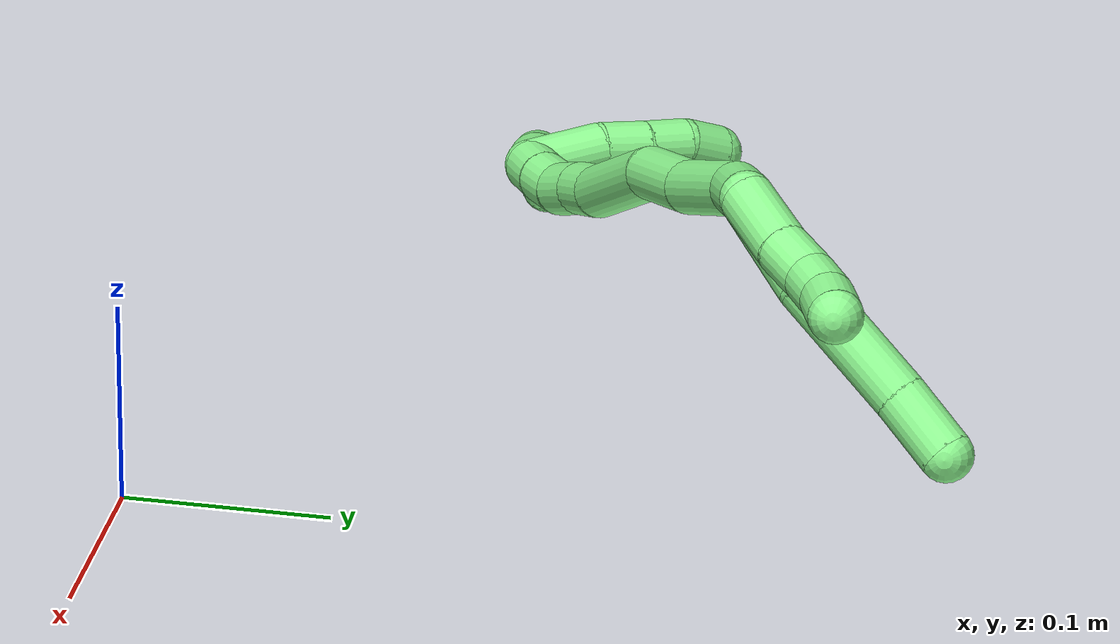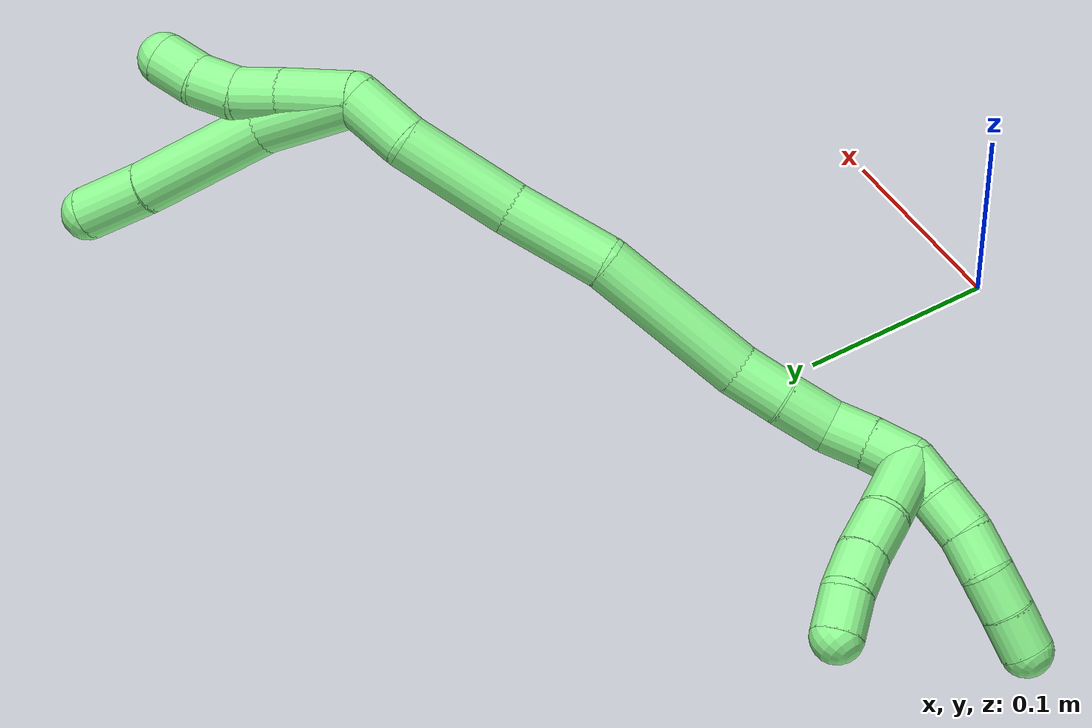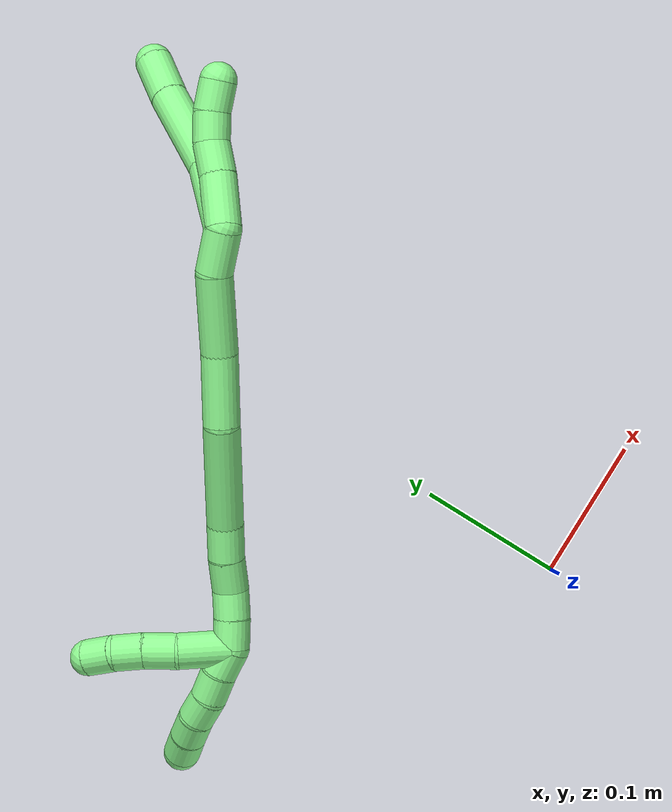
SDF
<sdf version="1.7">
 <world name="default">
  <model name="13">
   <static>0</static>
   <link name="13">
    <collision name="collision-cylinder-e_1_2_8">
     <pose>-0.005603 -0.021194 0.012303 1.04484 -0.224785 -0.129791</pose>
     <geometry><cylinder><radius>0.0125</radius><length>0.050277</length></cylinder></geometry>
     <surface>
      <friction><ode><mu>1.16</mu><mu2>1.16</mu2><slip1>0</slip1><slip2>0</slip2></ode></friction>
      <contact><ode><kp>1e+06</kp><kd>1</kd><max_vel>0</max_vel><min_depth>0.001</min_depth></ode></contact>
     </surface>
    </collision>
    <visual name="visual-cylinder-e_1_2_8">
     <pose>-0.005603 -0.021194 0.012303 1.04484 -0.224785 -0.129791</pose>
     <geometry><cylinder><radius>0.0125</radius><length>0.050277</length></cylinder></geometry>
     <material><ambient>0.564706 0.984314 0.572549 1</ambient></material>
    </visual>
    <collision name="collision-cylinder-e_2_8_9">
     <pose>-0.016116 -0.07353 0.03504 1.24751 -0.148387 -0.106873</pose>
     <geometry><cylinder><radius>0.0125</radius><length>0.066418</length></cylinder></geometry>
     <surface>
      <friction><ode><mu>1.16</mu><mu2>1.16</mu2><slip1>0</slip1><slip2>0</slip2></ode></friction>
      <contact><ode><kp>1e+06</kp><kd>1</kd><max_vel>0</max_vel><min_depth>0.001</min_depth></ode></contact>
     </surface>
    </collision>
    <visual name="visual-cylinder-e_2_8_9">
     <pose>-0.016116 -0.07353 0.03504 1.24751 -0.148387 -0.106873</pose>
     <geometry><cylinder><radius>0.0125</radius><length>0.066418</length></cylinder></geometry>
     <material><ambient>0.564706 0.984314 0.572549 1</ambient></material>
    </visual>
    <collision name="collision-cylinder-e_3_9_6">
     <pose>-0.023915 -0.119824 0.051752 1.17798 -0.174343 -0.116641</pose>
     <geometry><cylinder><radius>0.0125</radius><length>0.033305</length></cylinder></geometry>
     <surface>
      <friction><ode><mu>1.16</mu><mu2>1.16</mu2><slip1>0</slip1><slip2>0</slip2></ode></friction>
      <contact><ode><kp>1e+06</kp><kd>1</kd><max_vel>0</max_vel><min_depth>0.001</min_depth></ode></contact>
     </surface>
    </collision>
    <visual name="visual-cylinder-e_3_9_6">
     <pose>-0.023915 -0.119824 0.051752 1.17798 -0.174343 -0.116641</pose>
     <geometry><cylinder><radius>0.0125</radius><length>0.033305</length></cylinder></geometry>
     <material><ambient>0.564706 0.984314 0.572549 1</ambient></material>
    </visual>
    <collision name="collision-cylinder-e_1_2_10">
     <pose>-0.001558 -0.012516 0.01294 0.768755 -0.086336 -0.034941</pose>
     <geometry><cylinder><radius>0.0125</radius><length>0.03614</length></cylinder></geometry>
     <surface>
      <friction><ode><mu>1.16</mu><mu2>1.16</mu2><slip1>0</slip1><slip2>0</slip2></ode></friction>
      <contact><ode><kp>1e+06</kp><kd>1</kd><max_vel>0</max_vel><min_depth>0.001</min_depth></ode></contact>
     </surface>
    </collision>
    <visual name="visual-cylinder-e_1_2_10">
     <pose>-0.001558 -0.012516 0.01294 0.768755 -0.086336 -0.034941</pose>
     <geometry><cylinder><radius>0.0125</radius><length>0.03614</length></cylinder></geometry>
     <material><ambient>0.564706 0.984314 0.572549 1</ambient></material>
    </visual>
    <collision name="collision-cylinder-e_2_10_11">
     <pose>-0.003033 -0.033322 0.033687 0.815344 0.007347 0.003173</pose>
     <geometry><cylinder><radius>0.0125</radius><length>0.022775</length></cylinder></geometry>
     <surface>
      <friction><ode><mu>1.16</mu><mu2>1.16</mu2><slip1>0</slip1><slip2>0</slip2></ode></friction>
      <contact><ode><kp>1e+06</kp><kd>1</kd><max_vel>0</max_vel><min_depth>0.001</min_depth></ode></contact>
     </surface>
    </collision>
    <visual name="visual-cylinder-e_2_10_11">
     <pose>-0.003033 -0.033322 0.033687 0.815344 0.007347 0.003173</pose>
     <geometry><cylinder><radius>0.0125</radius><length>0.022775</length></cylinder></geometry>
     <material><ambient>0.564706 0.984314 0.572549 1</ambient></material>
    </visual>
    <collision name="collision-cylinder-e_3_11_12">
     <pose>-0.002455 -0.046729 0.05031 0.525949 0.048383 0.013028</pose>
     <geometry><cylinder><radius>0.0125</radius><length>0.020411</length></cylinder></geometry>
     <surface>
      <friction><ode><mu>1.16</mu><mu2>1.16</mu2><slip1>0</slip1><slip2>0</slip2></ode></friction>
      <contact><ode><kp>1e+06</kp><kd>1</kd><max_vel>0</max_vel><min_depth>0.001</min_depth></ode></contact>
     </surface>
    </collision>
    <visual name="visual-cylinder-e_3_11_12">
     <pose>-0.002455 -0.046729 0.05031 0.525949 0.048383 0.013028</pose>
     <geometry><cylinder><radius>0.0125</radius><length>0.020411</length></cylinder></geometry>
     <material><ambient>0.564706 0.984314 0.572549 1</ambient></material>
    </visual>
    <collision name="collision-cylinder-e_4_12_5">
     <pose>-0.001991 -0.055126 0.068929 0.322896 -0.002779 -0.000453</pose>
     <geometry><cylinder><radius>0.0125</radius><length>0.020675</length></cylinder></geometry>
     <surface>
      <friction><ode><mu>1.16</mu><mu2>1.16</mu2><slip1>0</slip1><slip2>0</slip2></ode></friction>
      <contact><ode><kp>1e+06</kp><kd>1</kd><max_vel>0</max_vel><min_depth>0.001</min_depth></ode></contact>
     </surface>
    </collision>
    <visual name="visual-cylinder-e_4_12_5">
     <pose>-0.001991 -0.055126 0.068929 0.322896 -0.002779 -0.000453</pose>
     <geometry><cylinder><radius>0.0125</radius><length>0.020675</length></cylinder></geometry>
     <material><ambient>0.564706 0.984314 0.572549 1</ambient></material>
    </visual>
    <collision name="collision-cylinder-e_1_2_13">
     <pose>-0.002718 0.002464 -0.014531 -2.9736 -0.182395 1.65336</pose>
     <geometry><cylinder><radius>0.0125</radius><length>0.029973</length></cylinder></geometry>
     <surface>
      <friction><ode><mu>1.16</mu><mu2>1.16</mu2><slip1>0</slip1><slip2>0</slip2></ode></friction>
      <contact><ode><kp>1e+06</kp><kd>1</kd><max_vel>0</max_vel><min_depth>0.001</min_depth></ode></contact>
     </surface>
    </collision>
    <visual name="visual-cylinder-e_1_2_13">
     <pose>-0.002718 0.002464 -0.014531 -2.9736 -0.182395 1.65336</pose>
     <geometry><cylinder><radius>0.0125</radius><length>0.029973</length></cylinder></geometry>
     <material><ambient>0.564706 0.984314 0.572549 1</ambient></material>
    </visual>
    <collision name="collision-cylinder-e_2_13_14">
     <pose>-0.016682 0.012666 -0.053367 -2.83338 -0.415211 1.87074</pose>
     <geometry><cylinder><radius>0.0125</radius><length>0.055752</length></cylinder></geometry>
     <surface>
      <friction><ode><mu>1.16</mu><mu2>1.16</mu2><slip1>0</slip1><slip2>0</slip2></ode></friction>
      <contact><ode><kp>1e+06</kp><kd>1</kd><max_vel>0</max_vel><min_depth>0.001</min_depth></ode></contact>
     </surface>
    </collision>
    <visual name="visual-cylinder-e_2_13_14">
     <pose>-0.016682 0.012666 -0.053367 -2.83338 -0.415211 1.87074</pose>
     <geometry><cylinder><radius>0.0125</radius><length>0.055752</length></cylinder></geometry>
     <material><ambient>0.564706 0.984314 0.572549 1</ambient></material>
    </visual>
    <collision name="collision-cylinder-e_3_14_15">
     <pose>-0.035305 0.028705 -0.099579 -2.77942 -0.305142 1.39712</pose>
     <geometry><cylinder><radius>0.0125</radius><length>0.049122</length></cylinder></geometry>
     <surface>
      <friction><ode><mu>1.16</mu><mu2>1.16</mu2><slip1>0</slip1><slip2>0</slip2></ode></friction>
      <contact><ode><kp>1e+06</kp><kd>1</kd><max_vel>0</max_vel><min_depth>0.001</min_depth></ode></contact>
     </surface>
    </collision>
    <visual name="visual-cylinder-e_3_14_15">
     <pose>-0.035305 0.028705 -0.099579 -2.77942 -0.305142 1.39712</pose>
     <geometry><cylinder><radius>0.0125</radius><length>0.049122</length></cylinder></geometry>
     <material><ambient>0.564706 0.984314 0.572549 1</ambient></material>
    </visual>
    <collision name="collision-cylinder-e_4_15_16">
     <pose>-0.060689 0.043101 -0.154545 -2.95923 -0.491706 2.44272</pose>
     <geometry><cylinder><radius>0.0125</radius><length>0.076269</length></cylinder></geometry>
     <surface>
      <friction><ode><mu>1.16</mu><mu2>1.16</mu2><slip1>0</slip1><slip2>0</slip2></ode></friction>
      <contact><ode><kp>1e+06</kp><kd>1</kd><max_vel>0</max_vel><min_depth>0.001</min_depth></ode></contact>
     </surface>
    </collision>
    <visual name="visual-cylinder-e_4_15_16">
     <pose>-0.060689 0.043101 -0.154545 -2.95923 -0.491706 2.44272</pose>
     <geometry><cylinder><radius>0.0125</radius><length>0.076269</length></cylinder></geometry>
     <material><ambient>0.564706 0.984314 0.572549 1</ambient></material>
    </visual>
    <collision name="collision-cylinder-e_5_16_17">
     <pose>-0.083132 0.052767 -0.198611 -2.82804 -0.366329 1.72873</pose>
     <geometry><cylinder><radius>0.0125</radius><length>0.024785</length></cylinder></geometry>
     <surface>
      <friction><ode><mu>1.16</mu><mu2>1.16</mu2><slip1>0</slip1><slip2>0</slip2></ode></friction>
      <contact><ode><kp>1e+06</kp><kd>1</kd><max_vel>0</max_vel><min_depth>0.001</min_depth></ode></contact>
     </surface>
    </collision>
    <visual name="visual-cylinder-e_5_16_17">
     <pose>-0.083132 0.052767 -0.198611 -2.82804 -0.366329 1.72873</pose>
     <geometry><cylinder><radius>0.0125</radius><length>0.024785</length></cylinder></geometry>
     <material><ambient>0.564706 0.984314 0.572549 1</ambient></material>
    </visual>
    <collision name="collision-cylinder-e_6_17_18">
     <pose>-0.09287 0.059904 -0.219621 -2.7989 -0.462805 1.87471</pose>
     <geometry><cylinder><radius>0.0125</radius><length>0.023741</length></cylinder></geometry>
     <surface>
      <friction><ode><mu>1.16</mu><mu2>1.16</mu2><slip1>0</slip1><slip2>0</slip2></ode></friction>
      <contact><ode><kp>1e+06</kp><kd>1</kd><max_vel>0</max_vel><min_depth>0.001</min_depth></ode></contact>
     </surface>
    </collision>
    <visual name="visual-cylinder-e_6_17_18">
     <pose>-0.09287 0.059904 -0.219621 -2.7989 -0.462805 1.87471</pose>
     <geometry><cylinder><radius>0.0125</radius><length>0.023741</length></cylinder></geometry>
     <material><ambient>0.564706 0.984314 0.572549 1</ambient></material>
    </visual>
    <collision name="collision-cylinder-e_7_18_19">
     <pose>-0.100201 0.068039 -0.238296 -2.65696 -0.204299 0.786261</pose>
     <geometry><cylinder><radius>0.0125</radius><length>0.020015</length></cylinder></geometry>
     <surface>
      <friction><ode><mu>1.16</mu><mu2>1.16</mu2><slip1>0</slip1><slip2>0</slip2></ode></friction>
      <contact><ode><kp>1e+06</kp><kd>1</kd><max_vel>0</max_vel><min_depth>0.001</min_depth></ode></contact>
     </surface>
    </collision>
    <visual name="visual-cylinder-e_7_18_19">
     <pose>-0.100201 0.068039 -0.238296 -2.65696 -0.204299 0.786261</pose>
     <geometry><cylinder><radius>0.0125</radius><length>0.020015</length></cylinder></geometry>
     <material><ambient>0.564706 0.984314 0.572549 1</ambient></material>
    </visual>
    <collision name="collision-cylinder-e_8_19_1">
     <pose>-0.103831 0.076663 -0.256155 -2.7256 -0.157941 0.717477</pose>
     <geometry><cylinder><radius>0.0125</radius><length>0.020341</length></cylinder></geometry>
     <surface>
      <friction><ode><mu>1.16</mu><mu2>1.16</mu2><slip1>0</slip1><slip2>0</slip2></ode></friction>
      <contact><ode><kp>1e+06</kp><kd>1</kd><max_vel>0</max_vel><min_depth>0.001</min_depth></ode></contact>
     </surface>
    </collision>
    <visual name="visual-cylinder-e_8_19_1">
     <pose>-0.103831 0.076663 -0.256155 -2.7256 -0.157941 0.717477</pose>
     <geometry><cylinder><radius>0.0125</radius><length>0.020341</length></cylinder></geometry>
     <material><ambient>0.564706 0.984314 0.572549 1</ambient></material>
    </visual>
    <collision name="collision-cylinder-e_1_1_20">
     <pose>-0.093881 0.06973 -0.27395 2.23511 0.691128 1.27304</pose>
     <geometry><cylinder><radius>0.0125</radius><length>0.036238</length></cylinder></geometry>
     <surface>
      <friction><ode><mu>1.16</mu><mu2>1.16</mu2><slip1>0</slip1><slip2>0</slip2></ode></friction>
      <contact><ode><kp>1e+06</kp><kd>1</kd><max_vel>0</max_vel><min_depth>0.001</min_depth></ode></contact>
     </surface>
    </collision>
    <visual name="visual-cylinder-e_1_1_20">
     <pose>-0.093881 0.06973 -0.27395 2.23511 0.691128 1.27304</pose>
     <geometry><cylinder><radius>0.0125</radius><length>0.036238</length></cylinder></geometry>
     <material><ambient>0.564706 0.984314 0.572549 1</ambient></material>
    </visual>
    <collision name="collision-cylinder-e_2_20_21">
     <pose>-0.076745 0.050411 -0.287726 2.12629 0.518141 0.889223</pose>
     <geometry><cylinder><radius>0.0125</radius><length>0.022563</length></cylinder></geometry>
     <surface>
      <friction><ode><mu>1.16</mu><mu2>1.16</mu2><slip1>0</slip1><slip2>0</slip2></ode></friction>
      <contact><ode><kp>1e+06</kp><kd>1</kd><max_vel>0</max_vel><min_depth>0.001</min_depth></ode></contact>
     </surface>
    </collision>
    <visual name="visual-cylinder-e_2_20_21">
     <pose>-0.076745 0.050411 -0.287726 2.12629 0.518141 0.889223</pose>
     <geometry><cylinder><radius>0.0125</radius><length>0.022563</length></cylinder></geometry>
     <material><ambient>0.564706 0.984314 0.572549 1</ambient></material>
    </visual>
    <collision name="collision-cylinder-e_3_21_22">
     <pose>-0.066193 0.034823 -0.298568 2.23412 0.494183 0.954698</pose>
     <geometry><cylinder><radius>0.0125</radius><length>0.020934</length></cylinder></geometry>
     <surface>
      <friction><ode><mu>1.16</mu><mu2>1.16</mu2><slip1>0</slip1><slip2>0</slip2></ode></friction>
      <contact><ode><kp>1e+06</kp><kd>1</kd><max_vel>0</max_vel><min_depth>0.001</min_depth></ode></contact>
     </surface>
    </collision>
    <visual name="visual-cylinder-e_3_21_22">
     <pose>-0.066193 0.034823 -0.298568 2.23412 0.494183 0.954698</pose>
     <geometry><cylinder><radius>0.0125</radius><length>0.020934</length></cylinder></geometry>
     <material><ambient>0.564706 0.984314 0.572549 1</ambient></material>
    </visual>
    <collision name="collision-cylinder-e_4_22_4">
     <pose>-0.059189 0.020084 -0.310768 2.28835 0.202595 0.440007</pose>
     <geometry><cylinder><radius>0.0125</radius><length>0.020265</length></cylinder></geometry>
     <surface>
      <friction><ode><mu>1.16</mu><mu2>1.16</mu2><slip1>0</slip1><slip2>0</slip2></ode></friction>
      <contact><ode><kp>1e+06</kp><kd>1</kd><max_vel>0</max_vel><min_depth>0.001</min_depth></ode></contact>
     </surface>
    </collision>
    <visual name="visual-cylinder-e_4_22_4">
     <pose>-0.059189 0.020084 -0.310768 2.28835 0.202595 0.440007</pose>
     <geometry><cylinder><radius>0.0125</radius><length>0.020265</length></cylinder></geometry>
     <material><ambient>0.564706 0.984314 0.572549 1</ambient></material>
    </visual>
    <collision name="collision-cylinder-e_1_1_23">
     <pose>-0.105583 0.080653 -0.275341 3.13472 -0.015226 -2.29354</pose>
     <geometry><cylinder><radius>0.0125</radius><length>0.02</length></cylinder></geometry>
     <surface>
      <friction><ode><mu>1.16</mu><mu2>1.16</mu2><slip1>0</slip1><slip2>0</slip2></ode></friction>
      <contact><ode><kp>1e+06</kp><kd>1</kd><max_vel>0</max_vel><min_depth>0.001</min_depth></ode></contact>
     </surface>
    </collision>
    <visual name="visual-cylinder-e_1_1_23">
     <pose>-0.105583 0.080653 -0.275341 3.13472 -0.015226 -2.29354</pose>
     <geometry><cylinder><radius>0.0125</radius><length>0.02</length></cylinder></geometry>
     <material><ambient>0.564706 0.984314 0.572549 1</ambient></material>
    </visual>
    <collision name="collision-cylinder-e_2_23_24">
     <pose>-0.10721 0.080373 -0.295228 3.12024 -0.148019 -2.8556</pose>
     <geometry><cylinder><radius>0.0125</radius><length>0.02</length></cylinder></geometry>
     <surface>
      <friction><ode><mu>1.16</mu><mu2>1.16</mu2><slip1>0</slip1><slip2>0</slip2></ode></friction>
      <contact><ode><kp>1e+06</kp><kd>1</kd><max_vel>0</max_vel><min_depth>0.001</min_depth></ode></contact>
     </surface>
    </collision>
    <visual name="visual-cylinder-e_2_23_24">
     <pose>-0.10721 0.080373 -0.295228 3.12024 -0.148019 -2.8556</pose>
     <geometry><cylinder><radius>0.0125</radius><length>0.02</length></cylinder></geometry>
     <material><ambient>0.564706 0.984314 0.572549 1</ambient></material>
    </visual>
    <collision name="collision-cylinder-e_3_24_25">
     <pose>-0.110642 0.078067 -0.314697 2.92625 -0.19702 -1.48137</pose>
     <geometry><cylinder><radius>0.0125</radius><length>0.02</length></cylinder></geometry>
     <surface>
      <friction><ode><mu>1.16</mu><mu2>1.16</mu2><slip1>0</slip1><slip2>0</slip2></ode></friction>
      <contact><ode><kp>1e+06</kp><kd>1</kd><max_vel>0</max_vel><min_depth>0.001</min_depth></ode></contact>
     </surface>
    </collision>
    <visual name="visual-cylinder-e_3_24_25">
     <pose>-0.110642 0.078067 -0.314697 2.92625 -0.19702 -1.48137</pose>
     <geometry><cylinder><radius>0.0125</radius><length>0.02</length></cylinder></geometry>
     <material><ambient>0.564706 0.984314 0.572549 1</ambient></material>
    </visual>
    <collision name="collision-cylinder-e_4_25_26">
     <pose>-0.116582 0.073676 -0.333157 2.88862 -0.409653 -2.04301</pose>
     <geometry><cylinder><radius>0.0125</radius><length>0.02</length></cylinder></geometry>
     <surface>
      <friction><ode><mu>1.16</mu><mu2>1.16</mu2><slip1>0</slip1><slip2>0</slip2></ode></friction>
      <contact><ode><kp>1e+06</kp><kd>1</kd><max_vel>0</max_vel><min_depth>0.001</min_depth></ode></contact>
     </surface>
    </collision>
    <visual name="visual-cylinder-e_4_25_26">
     <pose>-0.116582 0.073676 -0.333157 2.88862 -0.409653 -2.04301</pose>
     <geometry><cylinder><radius>0.0125</radius><length>0.02</length></cylinder></geometry>
     <material><ambient>0.564706 0.984314 0.572549 1</ambient></material>
    </visual>
    <collision name="collision-cylinder-e_5_26_3">
     <pose>-0.125268 0.068833 -0.350488 2.84884 -0.489586 -2.07525</pose>
     <geometry><cylinder><radius>0.0125</radius><length>0.02</length></cylinder></geometry>
     <surface>
      <friction><ode><mu>1.16</mu><mu2>1.16</mu2><slip1>0</slip1><slip2>0</slip2></ode></friction>
      <contact><ode><kp>1e+06</kp><kd>1</kd><max_vel>0</max_vel><min_depth>0.001</min_depth></ode></contact>
     </surface>
    </collision>
    <visual name="visual-cylinder-e_5_26_3">
     <pose>-0.125268 0.068833 -0.350488 2.84884 -0.489586 -2.07525</pose>
     <geometry><cylinder><radius>0.0125</radius><length>0.02</length></cylinder></geometry>
     <material><ambient>0.564706 0.984314 0.572549 1</ambient></material>
    </visual>
    <collision name="collision-sphere-3">
     <pose>-0.12997 0.066286 -0.358937 0 -0 0</pose>
     <geometry><sphere><radius>0.0125</radius></sphere></geometry>
     <surface>
      <friction><ode><mu>1.16</mu><mu2>1.16</mu2><slip1>0</slip1><slip2>0</slip2></ode></friction>
      <contact><ode><kp>1e+06</kp><kd>1</kd><max_vel>0</max_vel><min_depth>0.001</min_depth></ode></contact>
     </surface>
    </collision>
    <visual name="visual-sphere-3">
     <pose>-0.12997 0.066286 -0.358937 0 -0 0</pose>
     <geometry><sphere><radius>0.0125</radius></sphere></geometry>
     <material><ambient>0.564706 0.984314 0.572549 1</ambient></material>
    </visual>
    <collision name="collision-sphere-26">
     <pose>-0.120565 0.07138 -0.342038 0 -0 0</pose>
     <geometry><sphere><radius>0.0125</radius></sphere></geometry>
     <surface>
      <friction><ode><mu>1.16</mu><mu2>1.16</mu2><slip1>0</slip1><slip2>0</slip2></ode></friction>
      <contact><ode><kp>1e+06</kp><kd>1</kd><max_vel>0</max_vel><min_depth>0.001</min_depth></ode></contact>
     </surface>
    </collision>
    <visual name="visual-sphere-26">
     <pose>-0.120565 0.07138 -0.342038 0 -0 0</pose>
     <geometry><sphere><radius>0.0125</radius></sphere></geometry>
     <material><ambient>0.564706 0.984314 0.572549 1</ambient></material>
    </visual>
    <collision name="collision-sphere-25">
     <pose>-0.112599 0.075971 -0.324277 0 -0 0</pose>
     <geometry><sphere><radius>0.0125</radius></sphere></geometry>
     <surface>
      <friction><ode><mu>1.16</mu><mu2>1.16</mu2><slip1>0</slip1><slip2>0</slip2></ode></friction>
      <contact><ode><kp>1e+06</kp><kd>1</kd><max_vel>0</max_vel><min_depth>0.001</min_depth></ode></contact>
     </surface>
    </collision>
    <visual name="visual-sphere-25">
     <pose>-0.112599 0.075971 -0.324277 0 -0 0</pose>
     <geometry><sphere><radius>0.0125</radius></sphere></geometry>
     <material><ambient>0.564706 0.984314 0.572549 1</ambient></material>
    </visual>
    <collision name="collision-sphere-24">
     <pose>-0.108685 0.080162 -0.305116 0 -0 0</pose>
     <geometry><sphere><radius>0.0125</radius></sphere></geometry>
     <surface>
      <friction><ode><mu>1.16</mu><mu2>1.16</mu2><slip1>0</slip1><slip2>0</slip2></ode></friction>
      <contact><ode><kp>1e+06</kp><kd>1</kd><max_vel>0</max_vel><min_depth>0.001</min_depth></ode></contact>
     </surface>
    </collision>
    <visual name="visual-sphere-24">
     <pose>-0.108685 0.080162 -0.305116 0 -0 0</pose>
     <geometry><sphere><radius>0.0125</radius></sphere></geometry>
     <material><ambient>0.564706 0.984314 0.572549 1</ambient></material>
    </visual>
    <collision name="collision-sphere-23">
     <pose>-0.105735 0.080585 -0.28534 0 -0 0</pose>
     <geometry><sphere><radius>0.0125</radius></sphere></geometry>
     <surface>
      <friction><ode><mu>1.16</mu><mu2>1.16</mu2><slip1>0</slip1><slip2>0</slip2></ode></friction>
      <contact><ode><kp>1e+06</kp><kd>1</kd><max_vel>0</max_vel><min_depth>0.001</min_depth></ode></contact>
     </surface>
    </collision>
    <visual name="visual-sphere-23">
     <pose>-0.105735 0.080585 -0.28534 0 -0 0</pose>
     <geometry><sphere><radius>0.0125</radius></sphere></geometry>
     <material><ambient>0.564706 0.984314 0.572549 1</ambient></material>
    </visual>
    <collision name="collision-sphere-4">
     <pose>-0.057151 0.012606 -0.317294 0 -0 0</pose>
     <geometry><sphere><radius>0.0125</radius></sphere></geometry>
     <surface>
      <friction><ode><mu>1.16</mu><mu2>1.16</mu2><slip1>0</slip1><slip2>0</slip2></ode></friction>
      <contact><ode><kp>1e+06</kp><kd>1</kd><max_vel>0</max_vel><min_depth>0.001</min_depth></ode></contact>
     </surface>
    </collision>
    <visual name="visual-sphere-4">
     <pose>-0.057151 0.012606 -0.317294 0 -0 0</pose>
     <geometry><sphere><radius>0.0125</radius></sphere></geometry>
     <material><ambient>0.564706 0.984314 0.572549 1</ambient></material>
    </visual>
    <collision name="collision-sphere-22">
     <pose>-0.061228 0.027562 -0.304242 0 -0 0</pose>
     <geometry><sphere><radius>0.0125</radius></sphere></geometry>
     <surface>
      <friction><ode><mu>1.16</mu><mu2>1.16</mu2><slip1>0</slip1><slip2>0</slip2></ode></friction>
      <contact><ode><kp>1e+06</kp><kd>1</kd><max_vel>0</max_vel><min_depth>0.001</min_depth></ode></contact>
     </surface>
    </collision>
    <visual name="visual-sphere-22">
     <pose>-0.061228 0.027562 -0.304242 0 -0 0</pose>
     <geometry><sphere><radius>0.0125</radius></sphere></geometry>
     <material><ambient>0.564706 0.984314 0.572549 1</ambient></material>
    </visual>
    <collision name="collision-sphere-21">
     <pose>-0.071157 0.042083 -0.292894 0 -0 0</pose>
     <geometry><sphere><radius>0.0125</radius></sphere></geometry>
     <surface>
      <friction><ode><mu>1.16</mu><mu2>1.16</mu2><slip1>0</slip1><slip2>0</slip2></ode></friction>
      <contact><ode><kp>1e+06</kp><kd>1</kd><max_vel>0</max_vel><min_depth>0.001</min_depth></ode></contact>
     </surface>
    </collision>
    <visual name="visual-sphere-21">
     <pose>-0.071157 0.042083 -0.292894 0 -0 0</pose>
     <geometry><sphere><radius>0.0125</radius></sphere></geometry>
     <material><ambient>0.564706 0.984314 0.572549 1</ambient></material>
    </visual>
    <collision name="collision-sphere-20">
     <pose>-0.082332 0.058738 -0.282557 0 -0 0</pose>
     <geometry><sphere><radius>0.0125</radius></sphere></geometry>
     <surface>
      <friction><ode><mu>1.16</mu><mu2>1.16</mu2><slip1>0</slip1><slip2>0</slip2></ode></friction>
      <contact><ode><kp>1e+06</kp><kd>1</kd><max_vel>0</max_vel><min_depth>0.001</min_depth></ode></contact>
     </surface>
    </collision>
    <visual name="visual-sphere-20">
     <pose>-0.082332 0.058738 -0.282557 0 -0 0</pose>
     <geometry><sphere><radius>0.0125</radius></sphere></geometry>
     <material><ambient>0.564706 0.984314 0.572549 1</ambient></material>
    </visual>
    <collision name="collision-sphere-11">
     <pose>-0.002949 -0.041611 0.041494 0 -0 0</pose>
     <geometry><sphere><radius>0.0125</radius></sphere></geometry>
     <surface>
      <friction><ode><mu>1.16</mu><mu2>1.16</mu2><slip1>0</slip1><slip2>0</slip2></ode></friction>
      <contact><ode><kp>1e+06</kp><kd>1</kd><max_vel>0</max_vel><min_depth>0.001</min_depth></ode></contact>
     </surface>
    </collision>
    <visual name="visual-sphere-11">
     <pose>-0.002949 -0.041611 0.041494 0 -0 0</pose>
     <geometry><sphere><radius>0.0125</radius></sphere></geometry>
     <material><ambient>0.564706 0.984314 0.572549 1</ambient></material>
    </visual>
    <collision name="collision-sphere-10">
     <pose>-0.003116 -0.025033 0.02588 0 -0 0</pose>
     <geometry><sphere><radius>0.0125</radius></sphere></geometry>
     <surface>
      <friction><ode><mu>1.16</mu><mu2>1.16</mu2><slip1>0</slip1><slip2>0</slip2></ode></friction>
      <contact><ode><kp>1e+06</kp><kd>1</kd><max_vel>0</max_vel><min_depth>0.001</min_depth></ode></contact>
     </surface>
    </collision>
    <visual name="visual-sphere-10">
     <pose>-0.003116 -0.025033 0.02588 0 -0 0</pose>
     <geometry><sphere><radius>0.0125</radius></sphere></geometry>
     <material><ambient>0.564706 0.984314 0.572549 1</ambient></material>
    </visual>
    <collision name="collision-sphere-6">
     <pose>-0.026803 -0.134975 0.05803 0 -0 0</pose>
     <geometry><sphere><radius>0.0125</radius></sphere></geometry>
     <surface>
      <friction><ode><mu>1.16</mu><mu2>1.16</mu2><slip1>0</slip1><slip2>0</slip2></ode></friction>
      <contact><ode><kp>1e+06</kp><kd>1</kd><max_vel>0</max_vel><min_depth>0.001</min_depth></ode></contact>
     </surface>
    </collision>
    <visual name="visual-sphere-6">
     <pose>-0.026803 -0.134975 0.05803 0 -0 0</pose>
     <geometry><sphere><radius>0.0125</radius></sphere></geometry>
     <material><ambient>0.564706 0.984314 0.572549 1</ambient></material>
    </visual>
    <collision name="collision-sphere-9">
     <pose>-0.021026 -0.104673 0.045474 0 -0 0</pose>
     <geometry><sphere><radius>0.0125</radius></sphere></geometry>
     <surface>
      <friction><ode><mu>1.16</mu><mu2>1.16</mu2><slip1>0</slip1><slip2>0</slip2></ode></friction>
      <contact><ode><kp>1e+06</kp><kd>1</kd><max_vel>0</max_vel><min_depth>0.001</min_depth></ode></contact>
     </surface>
    </collision>
    <visual name="visual-sphere-9">
     <pose>-0.021026 -0.104673 0.045474 0 -0 0</pose>
     <geometry><sphere><radius>0.0125</radius></sphere></geometry>
     <material><ambient>0.564706 0.984314 0.572549 1</ambient></material>
    </visual>
    <collision name="collision-sphere-2">
     <geometry><sphere><radius>0.0125</radius></sphere></geometry>
     <surface>
      <friction><ode><mu>1.16</mu><mu2>1.16</mu2><slip1>0</slip1><slip2>0</slip2></ode></friction>
      <contact><ode><kp>1e+06</kp><kd>1</kd><max_vel>0</max_vel><min_depth>0.001</min_depth></ode></contact>
     </surface>
    </collision>
    <visual name="visual-sphere-2">
     <geometry><sphere><radius>0.0125</radius></sphere></geometry>
     <material><ambient>0.564706 0.984314 0.572549 1</ambient></material>
    </visual>
    <collision name="collision-sphere-19">
     <pose>-0.102231 0.072604 -0.246968 0 -0 0</pose>
     <geometry><sphere><radius>0.0125</radius></sphere></geometry>
     <surface>
      <friction><ode><mu>1.16</mu><mu2>1.16</mu2><slip1>0</slip1><slip2>0</slip2></ode></friction>
      <contact><ode><kp>1e+06</kp><kd>1</kd><max_vel>0</max_vel><min_depth>0.001</min_depth></ode></contact>
     </surface>
    </collision>
    <visual name="visual-sphere-19">
     <pose>-0.102231 0.072604 -0.246968 0 -0 0</pose>
     <geometry><sphere><radius>0.0125</radius></sphere></geometry>
     <material><ambient>0.564706 0.984314 0.572549 1</ambient></material>
    </visual>
    <collision name="collision-sphere-8">
     <pose>-0.011207 -0.042388 0.024606 0 -0 0</pose>
     <geometry><sphere><radius>0.0125</radius></sphere></geometry>
     <surface>
      <friction><ode><mu>1.16</mu><mu2>1.16</mu2><slip1>0</slip1><slip2>0</slip2></ode></friction>
      <contact><ode><kp>1e+06</kp><kd>1</kd><max_vel>0</max_vel><min_depth>0.001</min_depth></ode></contact>
     </surface>
    </collision>
    <visual name="visual-sphere-8">
     <pose>-0.011207 -0.042388 0.024606 0 -0 0</pose>
     <geometry><sphere><radius>0.0125</radius></sphere></geometry>
     <material><ambient>0.564706 0.984314 0.572549 1</ambient></material>
    </visual>
    <collision name="collision-sphere-12">
     <pose>-0.001962 -0.051846 0.059126 0 -0 0</pose>
     <geometry><sphere><radius>0.0125</radius></sphere></geometry>
     <surface>
      <friction><ode><mu>1.16</mu><mu2>1.16</mu2><slip1>0</slip1><slip2>0</slip2></ode></friction>
      <contact><ode><kp>1e+06</kp><kd>1</kd><max_vel>0</max_vel><min_depth>0.001</min_depth></ode></contact>
     </surface>
    </collision>
    <visual name="visual-sphere-12">
     <pose>-0.001962 -0.051846 0.059126 0 -0 0</pose>
     <geometry><sphere><radius>0.0125</radius></sphere></geometry>
     <material><ambient>0.564706 0.984314 0.572549 1</ambient></material>
    </visual>
    <collision name="collision-sphere-5">
     <pose>-0.002019 -0.058406 0.078732 0 -0 0</pose>
     <geometry><sphere><radius>0.0125</radius></sphere></geometry>
     <surface>
      <friction><ode><mu>1.16</mu><mu2>1.16</mu2><slip1>0</slip1><slip2>0</slip2></ode></friction>
      <contact><ode><kp>1e+06</kp><kd>1</kd><max_vel>0</max_vel><min_depth>0.001</min_depth></ode></contact>
     </surface>
    </collision>
    <visual name="visual-sphere-5">
     <pose>-0.002019 -0.058406 0.078732 0 -0 0</pose>
     <geometry><sphere><radius>0.0125</radius></sphere></geometry>
     <material><ambient>0.564706 0.984314 0.572549 1</ambient></material>
    </visual>
    <collision name="collision-sphere-13">
     <pose>-0.005437 0.004929 -0.029061 0 -0 0</pose>
     <geometry><sphere><radius>0.0125</radius></sphere></geometry>
     <surface>
      <friction><ode><mu>1.16</mu><mu2>1.16</mu2><slip1>0</slip1><slip2>0</slip2></ode></friction>
      <contact><ode><kp>1e+06</kp><kd>1</kd><max_vel>0</max_vel><min_depth>0.001</min_depth></ode></contact>
     </surface>
    </collision>
    <visual name="visual-sphere-13">
     <pose>-0.005437 0.004929 -0.029061 0 -0 0</pose>
     <geometry><sphere><radius>0.0125</radius></sphere></geometry>
     <material><ambient>0.564706 0.984314 0.572549 1</ambient></material>
    </visual>
    <collision name="collision-sphere-14">
     <pose>-0.027926 0.020404 -0.077672 0 -0 0</pose>
     <geometry><sphere><radius>0.0125</radius></sphere></geometry>
     <surface>
      <friction><ode><mu>1.16</mu><mu2>1.16</mu2><slip1>0</slip1><slip2>0</slip2></ode></friction>
      <contact><ode><kp>1e+06</kp><kd>1</kd><max_vel>0</max_vel><min_depth>0.001</min_depth></ode></contact>
     </surface>
    </collision>
    <visual name="visual-sphere-14">
     <pose>-0.027926 0.020404 -0.077672 0 -0 0</pose>
     <geometry><sphere><radius>0.0125</radius></sphere></geometry>
     <material><ambient>0.564706 0.984314 0.572549 1</ambient></material>
    </visual>
    <collision name="collision-sphere-15">
     <pose>-0.042684 0.037005 -0.121486 0 -0 0</pose>
     <geometry><sphere><radius>0.0125</radius></sphere></geometry>
     <surface>
      <friction><ode><mu>1.16</mu><mu2>1.16</mu2><slip1>0</slip1><slip2>0</slip2></ode></friction>
      <contact><ode><kp>1e+06</kp><kd>1</kd><max_vel>0</max_vel><min_depth>0.001</min_depth></ode></contact>
     </surface>
    </collision>
    <visual name="visual-sphere-15">
     <pose>-0.042684 0.037005 -0.121486 0 -0 0</pose>
     <geometry><sphere><radius>0.0125</radius></sphere></geometry>
     <material><ambient>0.564706 0.984314 0.572549 1</ambient></material>
    </visual>
    <collision name="collision-sphere-16">
     <pose>-0.078693 0.049198 -0.187605 0 -0 0</pose>
     <geometry><sphere><radius>0.0125</radius></sphere></geometry>
     <surface>
      <friction><ode><mu>1.16</mu><mu2>1.16</mu2><slip1>0</slip1><slip2>0</slip2></ode></friction>
      <contact><ode><kp>1e+06</kp><kd>1</kd><max_vel>0</max_vel><min_depth>0.001</min_depth></ode></contact>
     </surface>
    </collision>
    <visual name="visual-sphere-16">
     <pose>-0.078693 0.049198 -0.187605 0 -0 0</pose>
     <geometry><sphere><radius>0.0125</radius></sphere></geometry>
     <material><ambient>0.564706 0.984314 0.572549 1</ambient></material>
    </visual>
    <collision name="collision-sphere-17">
     <pose>-0.087571 0.056335 -0.209617 0 -0 0</pose>
     <geometry><sphere><radius>0.0125</radius></sphere></geometry>
     <surface>
      <friction><ode><mu>1.16</mu><mu2>1.16</mu2><slip1>0</slip1><slip2>0</slip2></ode></friction>
      <contact><ode><kp>1e+06</kp><kd>1</kd><max_vel>0</max_vel><min_depth>0.001</min_depth></ode></contact>
     </surface>
    </collision>
    <visual name="visual-sphere-17">
     <pose>-0.087571 0.056335 -0.209617 0 -0 0</pose>
     <geometry><sphere><radius>0.0125</radius></sphere></geometry>
     <material><ambient>0.564706 0.984314 0.572549 1</ambient></material>
    </visual>
    <collision name="collision-sphere-18">
     <pose>-0.09817 0.063474 -0.229625 0 -0 0</pose>
     <geometry><sphere><radius>0.0125</radius></sphere></geometry>
     <surface>
      <friction><ode><mu>1.16</mu><mu2>1.16</mu2><slip1>0</slip1><slip2>0</slip2></ode></friction>
      <contact><ode><kp>1e+06</kp><kd>1</kd><max_vel>0</max_vel><min_depth>0.001</min_depth></ode></contact>
     </surface>
    </collision>
    <visual name="visual-sphere-18">
     <pose>-0.09817 0.063474 -0.229625 0 -0 0</pose>
     <geometry><sphere><radius>0.0125</radius></sphere></geometry>
     <material><ambient>0.564706 0.984314 0.572549 1</ambient></material>
    </visual>
    <collision name="collision-sphere-1">
     <pose>-0.10543 0.080722 -0.265342 0 -0 0</pose>
     <geometry><sphere><radius>0.0125</radius></sphere></geometry>
     <surface>
      <friction><ode><mu>1.16</mu><mu2>1.16</mu2><slip1>0</slip1><slip2>0</slip2></ode></friction>
      <contact><ode><kp>1e+06</kp><kd>1</kd><max_vel>0</max_vel><min_depth>0.001</min_depth></ode></contact>
     </surface>
    </collision>
    <visual name="visual-sphere-1">
     <pose>-0.10543 0.080722 -0.265342 0 -0 0</pose>
     <geometry><sphere><radius>0.0125</radius></sphere></geometry>
     <material><ambient>0.564706 0.984314 0.572549 1</ambient></material>
    </visual>
    <inertial>
     <pose>-0.049529 0.013755 -0.122927 0 -0 0</pose>
     <mass>0.75</mass>
     <inertia><ixx>7.1e-05</ixx><ixy>0</ixy><ixz>0</ixz><iyy>0.000107</iyy><iyz>0</iyz><izz>5.1e-05</izz></inertia>
    </inertial>
   </link>
   <pose>0.07462 0.308562 0.224206 1.115 -0.924288 2.02703</pose>
  </model>
 </world>
</sdf>
